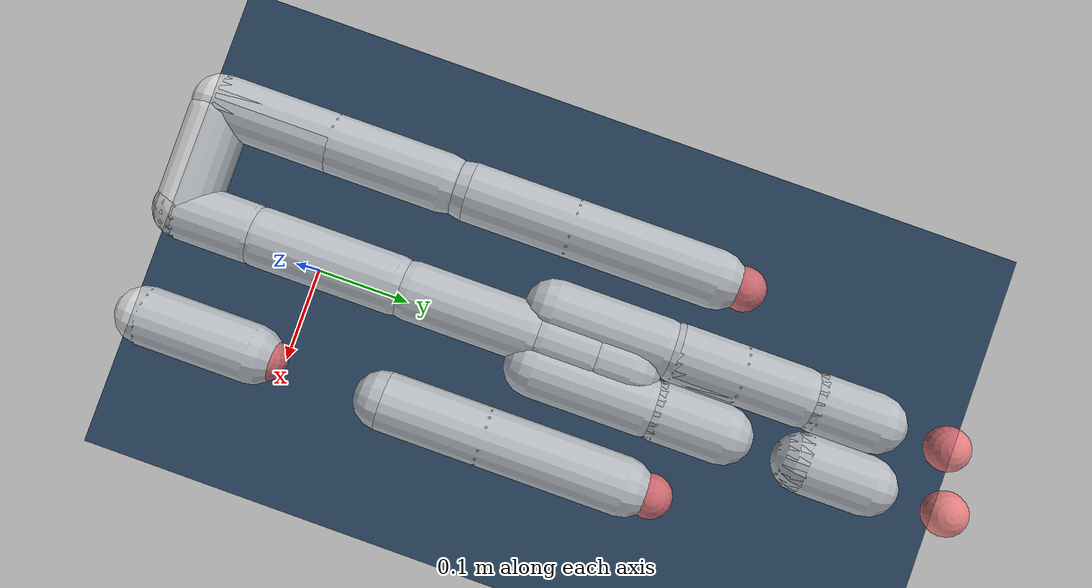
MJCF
<?xml version="1.0" ?>
<mujoco>
  <compiler angle="radian" autolimits="true"/>
  <option gravity="0 0 -9.81" timestep="0.01"/>
  <visual>
    <headlight diffuse="0.6 0.6 0.6" ambient="0.3 0.3 0.3" specular="0 0 0"/>
  </visual>
  <asset>
    <texture name="grid" type="2d" builtin="checker" width="512" height="512" rgb1="0.1 0.2 0.3" rgb2="0.2 0.3 0.4"/>
    <material name="grid" texture="grid" texrepeat="1 1" texuniform="true" reflectance="0.2"/>
  </asset>
  <worldbody>
    <geom name="floor" type="plane" size="10 10 0.1" material="grid" pos="0 0 0"/>
    <light name="spotlight" directional="true" diffuse="0.8 0.8 0.8" specular="0.2 0.2 0.2" pos="0 -2 4" dir="0 1 -1"/>
    <body name="Armature_body">
      <geom type="capsule" size="0.02" fromto="0 0 0 -0.011092236824333667 0.0 -0.003149164840579033" rgba="0.9 0.9 0.9 0.8"/>
      <joint name="Armature" type="free"/>
      <body name="Root_body" pos="-0.012324707582592964 0.0 -0.0034990720450878143">
        <geom type="capsule" size="0.02" fromto="0 0 0 -1.5467069225394426e-08 0.0 0.37959182560443877" rgba="0.9 0.9 0.9 0.8"/>
        <joint name="Root" type="ball"/>
        <body name="Hip_body" pos="-1.7185632472660473e-08 0.0 0.4217686951160431">
          <geom type="sphere" size="0.02" rgba="0.8 0.8 0.8 0.8"/>
          <joint name="Hip" type="ball"/>
          <body name="Pelvis_body" pos="0.0 0.001 0.0">
            <geom type="capsule" size="0.02" fromto="0 0 0 -0.06599959507584573 -8.671435716678388e-05 0.0014363062684424222" rgba="0.9 0.9 0.9 0.8"/>
            <joint name="Pelvis" type="ball"/>
            <body name="L_Thigh_body" pos="-0.07333288341760635 -9.634928574087098e-05 0.0015958958538249135">
              <geom type="capsule" size="0.02" fromto="0 0 0 -2.3081155086401852e-05 0.15378540605306626 -1.2491035022321739e-06" rgba="0.9 0.9 0.9 0.8"/>
              <joint name="L_Thigh" type="ball"/>
              <body name="L_Calf_body" pos="-2.5645727873779833e-05 0.17087267339229584 -1.387892780257971e-06">
                <geom type="capsule" size="0.02" fromto="0 0 0 -4.185712896287441e-07 0.16974603831768037 4.216037377773319e-05" rgba="0.9 0.9 0.9 0.8"/>
                <joint name="L_Calf" type="ball"/>
                <body name="L_Foot_body" pos="-4.650792106986046e-07 0.18860670924186707 4.684485975303687e-05">
                  <geom type="sphere" size="0.015" rgba="1 0.5 0.5 0.8"/>
                  <joint name="L_Foot" type="ball"/>
                </body>
                <body name="L_CalfTwist01_body" pos="-6.2427716329693794e-09 -0.00011017103679478168 -8.355964808970384e-09">
                  <geom type="capsule" size="0.02" fromto="0 0 0 2.35741026699543e-10 0.07082881182432176 -1.1125791488098002e-08" rgba="0.9 0.9 0.9 0.8"/>
                  <joint name="L_CalfTwist01" type="ball"/>
                  <body name="L_CalfTwist02_body" pos="2.6193447411060333e-10 0.07869867980480194 -1.2361990542331114e-08">
                    <geom type="sphere" size="0.015" rgba="1 0.5 0.5 0.8"/>
                    <joint name="L_CalfTwist02" type="ball"/>
                  </body>
                </body>
              </body>
              <body name="L_ThighTwist01_body" pos="-2.045271685346961e-08 -8.537725079804659e-05 7.491512299395708e-09">
                <geom type="capsule" size="0.02" fromto="0 0 0 3.621244104579091e-09 0.07688540071249009 2.1851704445907673e-09" rgba="0.9 0.9 0.9 0.8"/>
                <joint name="L_ThighTwist01" type="ball"/>
                <body name="L_ThighTwist02_body" pos="4.0236045606434345e-09 0.08542822301387787 2.427967160656408e-09">
                  <geom type="sphere" size="0.015" rgba="1 0.5 0.5 0.8"/>
                  <joint name="L_ThighTwist02" type="ball"/>
                </body>
              </body>
            </body>
            <body name="R_Thigh_body" pos="0.07334408164024353 -0.00023531090118922293 -0.0015533219557255507">
              <geom type="capsule" size="0.02" fromto="0 0 0 -9.856325355883656e-09 -7.380791575997137e-05 8.429736908510677e-10" rgba="0.9 0.9 0.9 0.8"/>
              <joint name="R_Thigh" type="ball"/>
              <body name="R_ThighTwist01_body" pos="-1.0951472617648506e-08 -8.200879528885707e-05 9.36637434278964e-10">
                <geom type="capsule" size="0.02" fromto="0 0 0 -6.0919733257946975e-09 0.0737862691283226 -1.119616399591905e-08" rgba="0.9 0.9 0.9 0.8"/>
                <joint name="R_ThighTwist01" type="ball"/>
                <body name="R_ThighTwist02_body" pos="-6.768859250882997e-09 0.081984743475914 -1.2440182217687834e-08">
                  <geom type="sphere" size="0.015" rgba="1 0.5 0.5 0.8"/>
                  <joint name="R_ThighTwist02" type="ball"/>
                </body>
              </body>
              <body name="R_Calf_body" pos="1.0887441931117792e-05 0.1639886349439621 2.2789558897784445e-06">
                <geom type="capsule" size="0.02" fromto="0 0 0 2.5634217308834196e-07 0.16473300307989122 4.088786336069461e-05" rgba="0.9 0.9 0.9 0.8"/>
                <joint name="R_Calf" type="ball"/>
                <body name="R_Foot_body" pos="2.848246367648244e-07 0.183036670088768 4.543095928966068e-05">
                  <geom type="sphere" size="0.015" rgba="1 0.5 0.5 0.8"/>
                  <joint name="R_Foot" type="ball"/>
                </body>
                <body name="R_CalfTwist01_body" pos="1.2660166248679161e-08 -0.00010692840442061424 -2.861646919427585e-09">
                  <geom type="capsule" size="0.02" fromto="0 0 0 -1.7025740817189218e-10 0.06873717829585076 -4.236147432834514e-10" rgba="0.9 0.9 0.9 0.8"/>
                  <joint name="R_CalfTwist01" type="ball"/>
                  <body name="R_CalfTwist02_body" pos="-1.8917489796876907e-10 0.07637464255094528 -4.706830480927238e-10">
                    <geom type="sphere" size="0.015" rgba="1 0.5 0.5 0.8"/>
                    <joint name="R_CalfTwist02" type="ball"/>
                  </body>
                </body>
              </body>
            </body>
          </body>
          <body name="Waist_body" pos="2.4497974663972855e-05 4.139832526561804e-05 2.095615491271019e-05">
            <geom type="capsule" size="0.02" fromto="0 0 0 -3.313433527551979e-10 0.04724057056009769 1.9737625533977622e-09" rgba="0.9 0.9 0.9 0.8"/>
            <joint name="Waist" type="ball"/>
            <body name="Spine01_body" pos="-3.6815928083910876e-10 0.052489522844552994 2.193069503775291e-09">
              <geom type="capsule" size="0.02" fromto="0 0 0 1.2752399136672922e-11 0.09437498599290849 -2.214463812322265e-09" rgba="0.9 0.9 0.9 0.8"/>
              <joint name="Spine01" type="ball"/>
              <body name="Spine02_body" pos="1.4169332374081023e-11 0.10486109554767609 -2.4605153470247387e-09">
                <geom type="capsule" size="0.02" fromto="0 0 0 3.245883561930896e-11 0.08253971859812737 -1.3644948171354089e-09" rgba="0.9 0.9 0.9 0.8"/>
                <joint name="Spine02" type="ball"/>
                <body name="NeckTwist01_body" pos="3.6065372910343285e-11 0.09171079844236374 -1.5161053523726764e-09">
                  <geom type="capsule" size="0.02" fromto="0 0 0 -1.2868546228617107e-10 0.033894733339548115 6.07799710561352e-10" rgba="0.9 0.9 0.9 0.8"/>
                  <joint name="NeckTwist01" type="ball"/>
                  <body name="NeckTwist02_body" pos="-1.429838469846345e-10 0.03766081482172012 6.753330117348355e-10">
                    <geom type="capsule" size="0.02" fromto="0 0 0 1.9984833787844992e-10 0.02215242125093937 2.8964796561226083e-09" rgba="0.9 0.9 0.9 0.8"/>
                    <joint name="NeckTwist02" type="ball"/>
                    <body name="Head_body" pos="2.2205370875383323e-10 0.024613801389932632 3.21831072902512e-09">
                      <geom type="sphere" size="0.015" rgba="1 0.5 0.5 0.8"/>
                      <joint name="Head" type="ball"/>
                    </body>
                  </body>
                </body>
                <body name="L_Clavicle_body" pos="-0.019999975338578224 0.0916731134057045 5.78786263361053e-09">
                  <geom type="capsule" size="0.02" fromto="0 0 0 1.4021742026670836e-05 0.07566317841410637 -3.5889381706510903e-06" rgba="0.9 0.9 0.9 0.8"/>
                  <joint name="L_Clavicle" type="ball"/>
                  <body name="L_Upperarm_body" pos="1.5579713362967595e-05 0.08407019823789597 -3.9877090785012115e-06">
                    <geom type="capsule" size="0.02" fromto="0 0 0 -1.8502658349461854e-06 0.08682262971997261 4.6091185140539895e-06" rgba="0.9 0.9 0.9 0.8"/>
                    <joint name="L_Upperarm" type="ball"/>
                    <body name="L_Forearm_body" pos="-2.0558509277179837e-06 0.09646958857774734 5.121242793393321e-06">
                      <geom type="capsule" size="0.02" fromto="0 0 0 1.5501841410525686e-08 -4.023360670544207e-05 1.7217011816228478e-09" rgba="0.9 0.9 0.9 0.8"/>
                      <joint name="L_Forearm" type="ball"/>
                      <body name="L_ForearmTwist01_body" pos="1.7224268233917428e-08 -4.470400745049119e-05 1.9130013129142753e-09">
                        <geom type="capsule" size="0.02" fromto="0 0 0 1.2409298588700324e-09 0.04025212526321411 -3.459760478108365e-10" rgba="0.9 0.9 0.9 0.8"/>
                        <joint name="L_ForearmTwist01" type="ball"/>
                        <body name="L_ForearmTwist02_body" pos="1.378810954300036e-09 0.04472458362579346 -3.844178309009294e-10">
                          <geom type="sphere" size="0.015" rgba="1 0.5 0.5 0.8"/>
                          <joint name="L_ForearmTwist02" type="ball"/>
                        </body>
                      </body>
                      <body name="L_Hand_body" pos="1.7111497996324943e-08 0.08937765657901764 2.378655494794657e-09">
                        <geom type="sphere" size="0.015" rgba="1 0.5 0.5 0.8"/>
                        <joint name="L_Hand" type="ball"/>
                      </body>
                    </body>
                    <body name="L_UpperarmTwist01_body" pos="1.2324198905844241e-07 -4.826957592740655e-05 2.836770818248624e-10">
                      <geom type="capsule" size="0.02" fromto="0 0 0 6.483041943283752e-08 0.04341455027461052 2.1934454252914293e-10" rgba="0.9 0.9 0.9 0.8"/>
                      <joint name="L_UpperarmTwist01" type="ball"/>
                      <body name="L_UpperarmTwist02_body" pos="7.203379936981946e-08 0.04823838919401169 2.4371615836571436e-10">
                        <geom type="sphere" size="0.015" rgba="1 0.5 0.5 0.8"/>
                        <joint name="L_UpperarmTwist02" type="ball"/>
                      </body>
                    </body>
                  </body>
                </body>
                <body name="R_Clavicle_body" pos="0.020000014454126358 0.0916731059551239 -5.094797028704079e-09">
                  <geom type="capsule" size="0.02" fromto="0 0 0 -2.8797992854379117e-05 0.07663030922412872 2.4921593876570115e-06" rgba="0.9 0.9 0.9 0.8"/>
                  <joint name="R_Clavicle" type="ball"/>
                  <body name="R_Upperarm_body" pos="-3.199776983819902e-05 0.08514478802680969 2.7690659862855682e-06">
                    <geom type="capsule" size="0.02" fromto="0 0 0 5.465917638503015e-08 -4.450241176527925e-05 -4.870088332609158e-10" rgba="0.9 0.9 0.9 0.8"/>
                    <joint name="R_Upperarm" type="ball"/>
                    <body name="R_UpperarmTwist01_body" pos="6.073241820558906e-08 -4.944712418364361e-05 -5.411209258454619e-10">
                      <geom type="capsule" size="0.02" fromto="0 0 0 -6.823147487011738e-08 0.04450485482811928 1.496447765703124e-09" rgba="0.9 0.9 0.9 0.8"/>
                      <joint name="R_UpperarmTwist01" type="ball"/>
                      <body name="R_UpperarmTwist02_body" pos="-7.581274985568598e-08 0.04944983869791031 1.6627197396701376e-09">
                        <geom type="sphere" size="0.015" rgba="1 0.5 0.5 0.8"/>
                        <joint name="R_UpperarmTwist02" type="ball"/>
                      </body>
                    </body>
                    <body name="R_Forearm_body" pos="8.797584087005816e-06 0.09889685362577438 1.5775609426782466e-05">
                      <geom type="capsule" size="0.02" fromto="0 0 0 -5.051165246072742e-08 -4.3971804552711545e-05 6.934298735217226e-09" rgba="0.9 0.9 0.9 0.8"/>
                      <joint name="R_Forearm" type="ball"/>
                      <body name="R_ForearmTwist01_body" pos="-5.612405828969713e-08 -4.885756061412394e-05 7.704776372463584e-09">
                        <geom type="capsule" size="0.02" fromto="0 0 0 -5.590396625620997e-08 0.043947532027959826 4.340713388728545e-09" rgba="0.9 0.9 0.9 0.8"/>
                        <joint name="R_ForearmTwist01" type="ball"/>
                        <body name="R_ForearmTwist02_body" pos="-6.211551806245552e-08 0.04883059114217758 4.8230148763650504e-09">
                          <geom type="sphere" size="0.015" rgba="1 0.5 0.5 0.8"/>
                          <joint name="R_ForearmTwist02" type="ball"/>
                        </body>
                      </body>
                      <body name="R_Hand_body" pos="6.445776534746983e-08 0.09758304059505463 -1.608449151646596e-09">
                        <geom type="sphere" size="0.015" rgba="1 0.5 0.5 0.8"/>
                        <joint name="R_Hand" type="ball"/>
                      </body>
                    </body>
                  </body>
                </body>
              </body>
            </body>
          </body>
        </body>
      </body>
    </body>
  </worldbody>
  <actuator>
    <motor name="Armature_motor" joint="Armature" gear="250" ctrllimited="true" ctrlrange="-1 1"/>
    <motor name="Head_motor" joint="Head" gear="100" ctrllimited="true" ctrlrange="-1 1"/>
    <motor name="Hip_motor" joint="Hip" gear="100" ctrllimited="true" ctrlrange="-1 1"/>
    <motor name="L_Calf_motor" joint="L_Calf" gear="100" ctrllimited="true" ctrlrange="-1 1"/>
    <motor name="L_CalfTwist01_motor" joint="L_CalfTwist01" gear="100" ctrllimited="true" ctrlrange="-1 1"/>
    <motor name="L_CalfTwist02_motor" joint="L_CalfTwist02" gear="100" ctrllimited="true" ctrlrange="-1 1"/>
    <motor name="L_Clavicle_motor" joint="L_Clavicle" gear="100" ctrllimited="true" ctrlrange="-1 1"/>
    <motor name="L_Foot_motor" joint="L_Foot" gear="100" ctrllimited="true" ctrlrange="-1 1"/>
    <motor name="L_Forearm_motor" joint="L_Forearm" gear="100" ctrllimited="true" ctrlrange="-1 1"/>
    <motor name="L_ForearmTwist01_motor" joint="L_ForearmTwist01" gear="100" ctrllimited="true" ctrlrange="-1 1"/>
    <motor name="L_ForearmTwist02_motor" joint="L_ForearmTwist02" gear="100" ctrllimited="true" ctrlrange="-1 1"/>
    <motor name="L_Hand_motor" joint="L_Hand" gear="100" ctrllimited="true" ctrlrange="-1 1"/>
    <motor name="L_Thigh_motor" joint="L_Thigh" gear="100" ctrllimited="true" ctrlrange="-1 1"/>
    <motor name="L_ThighTwist01_motor" joint="L_ThighTwist01" gear="100" ctrllimited="true" ctrlrange="-1 1"/>
    <motor name="L_ThighTwist02_motor" joint="L_ThighTwist02" gear="100" ctrllimited="true" ctrlrange="-1 1"/>
    <motor name="L_Upperarm_motor" joint="L_Upperarm" gear="100" ctrllimited="true" ctrlrange="-1 1"/>
    <motor name="L_UpperarmTwist01_motor" joint="L_UpperarmTwist01" gear="100" ctrllimited="true" ctrlrange="-1 1"/>
    <motor name="L_UpperarmTwist02_motor" joint="L_UpperarmTwist02" gear="100" ctrllimited="true" ctrlrange="-1 1"/>
    <motor name="NeckTwist01_motor" joint="NeckTwist01" gear="100" ctrllimited="true" ctrlrange="-1 1"/>
    <motor name="NeckTwist02_motor" joint="NeckTwist02" gear="100" ctrllimited="true" ctrlrange="-1 1"/>
    <motor name="Pelvis_motor" joint="Pelvis" gear="100" ctrllimited="true" ctrlrange="-1 1"/>
    <motor name="R_Calf_motor" joint="R_Calf" gear="100" ctrllimited="true" ctrlrange="-1 1"/>
    <motor name="R_CalfTwist01_motor" joint="R_CalfTwist01" gear="100" ctrllimited="true" ctrlrange="-1 1"/>
    <motor name="R_CalfTwist02_motor" joint="R_CalfTwist02" gear="100" ctrllimited="true" ctrlrange="-1 1"/>
    <motor name="R_Clavicle_motor" joint="R_Clavicle" gear="100" ctrllimited="true" ctrlrange="-1 1"/>
    <motor name="R_Foot_motor" joint="R_Foot" gear="100" ctrllimited="true" ctrlrange="-1 1"/>
    <motor name="R_Forearm_motor" joint="R_Forearm" gear="100" ctrllimited="true" ctrlrange="-1 1"/>
    <motor name="R_ForearmTwist01_motor" joint="R_ForearmTwist01" gear="100" ctrllimited="true" ctrlrange="-1 1"/>
    <motor name="R_ForearmTwist02_motor" joint="R_ForearmTwist02" gear="100" ctrllimited="true" ctrlrange="-1 1"/>
    <motor name="R_Hand_motor" joint="R_Hand" gear="100" ctrllimited="true" ctrlrange="-1 1"/>
    <motor name="R_Thigh_motor" joint="R_Thigh" gear="100" ctrllimited="true" ctrlrange="-1 1"/>
    <motor name="R_ThighTwist01_motor" joint="R_ThighTwist01" gear="100" ctrllimited="true" ctrlrange="-1 1"/>
    <motor name="R_ThighTwist02_motor" joint="R_ThighTwist02" gear="100" ctrllimited="true" ctrlrange="-1 1"/>
    <motor name="R_Upperarm_motor" joint="R_Upperarm" gear="100" ctrllimited="true" ctrlrange="-1 1"/>
    <motor name="R_UpperarmTwist01_motor" joint="R_UpperarmTwist01" gear="100" ctrllimited="true" ctrlrange="-1 1"/>
    <motor name="R_UpperarmTwist02_motor" joint="R_UpperarmTwist02" gear="100" ctrllimited="true" ctrlrange="-1 1"/>
    <motor name="Root_motor" joint="Root" gear="100" ctrllimited="true" ctrlrange="-1 1"/>
    <motor name="Spine01_motor" joint="Spine01" gear="100" ctrllimited="true" ctrlrange="-1 1"/>
    <motor name="Spine02_motor" joint="Spine02" gear="100" ctrllimited="true" ctrlrange="-1 1"/>
    <motor name="Waist_motor" joint="Waist" gear="100" ctrllimited="true" ctrlrange="-1 1"/>
  </actuator>
</mujoco>
